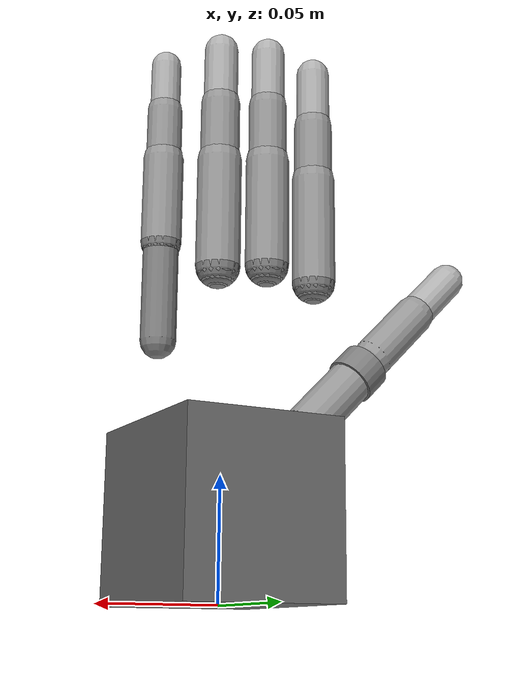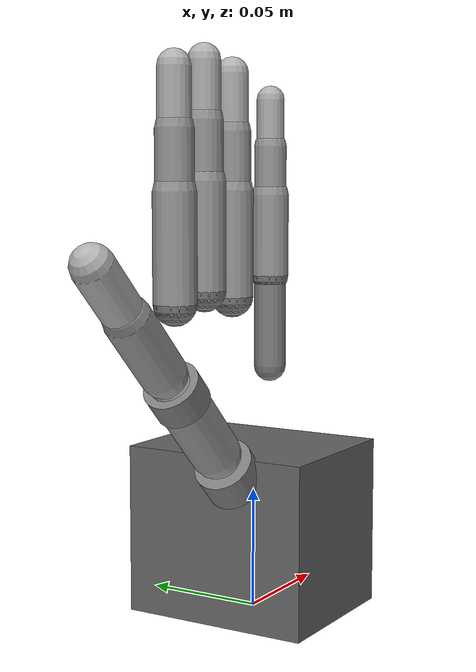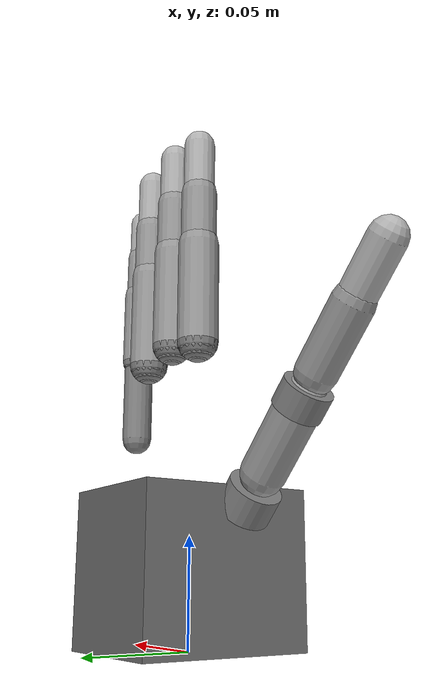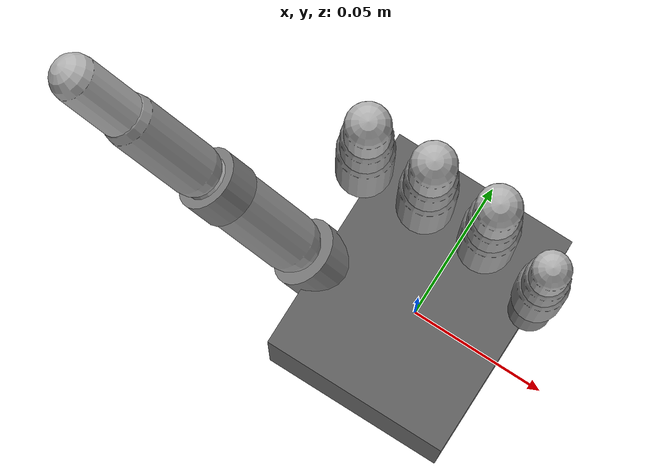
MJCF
<mujoco model="shadowhand-left">
  <compiler angle="radian" balanceinertia="true"/>

  <option jacobian="sparse"
          integrator="RK4"
          timestep="0.002"
          solver="Newton"
          iterations="50"
          tolerance="1e-10"
          impratio="10"/>

  <visual>
    <global offwidth="3840" offheight="2160" />
  </visual>

  <default>
    <joint armature="0.005" damping="0.1" frictionloss="0.01"/>
    <default class="robot">
      <default class="visual">
        <geom contype="0" conaffinity="0" group="1" />
      </default>
      <default class="collision">
        <geom contype="1" conaffinity="1" group="3" />
      </default>
    </default>
  </default>

  <asset>
    <texture type="skybox" builtin="gradient" rgb1="0.3 0.5 0.7" rgb2="0 0 0" width="512" height="3072"/>
    <texture type="2d" name="groundplane" builtin="checker" mark="edge" rgb1="0.2 0.3 0.4" rgb2="0.1 0.2 0.3" markrgb="0.8 0.8 0.8" width="300" height="300"/>
    <material name="groundplane" texture="groundplane" texuniform="true" texrepeat="5 5" reflectance="0.2"/>
  </asset>

  <worldbody>
    <!-- Palm -->
    <body name="palm" pos="0 0 0.035">
      <inertial pos="0 0 0.035" mass="0.3" diaginertia="0.0003 0.0002 0.0001"/>
      <geom name="palm_visual" type="box" size="0.033 0.04 0.035" rgba="0.4 0.4 0.4 1" class="visual"/>
      <geom name="palm_collision" type="box" size="0.033 0.04 0.035" class="collision"/>

      <!-- ==================== THUMB (TH) - Mirrored ==================== -->
      <body name="thbase" pos="-0.034 -0.009 0.029" euler="0 -0.7854 0.5236">
        <inertial pos="0 0 0" mass="0.01" diaginertia="1e-6 1e-6 1e-6"/>
        <joint name="THJ5" type="hinge" axis="0 0 1" range="-1.047 1.047" actuatorfrcrange="-2 2"/>
        <geom name="thbase_visual" type="cylinder" size="0.012 0.007" rgba="0.5 0.5 0.5 1" class="visual"/>
        <geom name="thbase_collision" type="cylinder" size="0.012 0.007" class="collision"/>

        <body name="thproximal" pos="0 0 0.014" euler="0 0 0">
          <inertial pos="0 0 0.019" mass="0.04" diaginertia="1e-5 1e-5 5e-6"/>
          <joint name="THJ4" type="hinge" axis="1 0 0" range="0 1.222" actuatorfrcrange="-2 2"/>
          <geom name="thproximal_visual" type="capsule" size="0.01" fromto="0 0 0 0 0 0.038" rgba="0.6 0.6 0.6 1" class="visual"/>
          <geom name="thproximal_collision" type="capsule" size="0.01" fromto="0 0 0 0 0 0.038" class="collision"/>

          <body name="thhub" pos="0 0 0.038">
            <inertial pos="0 0 0.005" mass="0.01" diaginertia="1e-6 1e-6 1e-6"/>
            <joint name="THJ3" type="hinge" axis="1 0 0" range="-0.209 0.209" actuatorfrcrange="-1 1"/>
            <geom name="thhub_visual" type="cylinder" size="0.011 0.006" rgba="0.5 0.5 0.5 1" class="visual"/>
            <geom name="thhub_collision" type="cylinder" size="0.011 0.006" class="collision"/>

            <body name="thmiddle" pos="0 0 0.012">
              <inertial pos="0 0 0.016" mass="0.026" diaginertia="8e-6 8e-6 3e-6"/>
              <joint name="THJ2" type="hinge" axis="1 0 0" range="-0.524 0.524" actuatorfrcrange="-1 1"/>
              <geom name="thmiddle_visual" type="capsule" size="0.009" fromto="0 0 0 0 0 0.032" rgba="0.6 0.6 0.6 1" class="visual"/>
              <geom name="thmiddle_collision" type="capsule" size="0.009" fromto="0 0 0 0 0 0.032" class="collision"/>

              <body name="thdistal" pos="0 0 0.032">
                <inertial pos="0 0 0.0135" mass="0.016" diaginertia="4e-6 4e-6 2e-6"/>
                <joint name="THJ1" type="hinge" axis="1 0 0" range="-0.262 1.571" actuatorfrcrange="-0.5 0.5"/>
                <geom name="thdistal_visual" type="capsule" size="0.008" fromto="0 0 0 0 0 0.027" rgba="0.7 0.7 0.7 1" class="visual"/>
                <geom name="thdistal_collision" type="capsule" size="0.008" fromto="0 0 0 0 0 0.027" class="collision"/>
                <site name="thtip" pos="0 0 0.027" size="0.005"/>
              </body>
            </body>
          </body>
        </body>
      </body>

      <!-- ==================== FIRST FINGER / INDEX (FF) - Mirrored ==================== -->
      <body name="ffknuckle" pos="-0.033 0.017 0.095">
        <inertial pos="0 0 0" mass="0.008" diaginertia="5e-7 5e-7 5e-7"/>
        <joint name="FFJ4" type="hinge" axis="0 1 0" range="-0.349 0.349" actuatorfrcrange="-0.5 0.5"/>
        <geom name="ffknuckle_visual" type="sphere" size="0.009" rgba="0.5 0.5 0.5 1" class="visual"/>
        <geom name="ffknuckle_collision" type="sphere" size="0.009" class="collision"/>

        <body name="ffproximal" pos="0 0 0">
          <inertial pos="0 0 0.0225" mass="0.03" diaginertia="1.2e-5 1.2e-5 4e-6"/>
          <joint name="FFJ3" type="hinge" axis="1 0 0" range="0 1.571" actuatorfrcrange="-2 2"/>
          <geom name="ffproximal_visual" type="capsule" size="0.009" fromto="0 0 0 0 0 0.045" rgba="0.6 0.6 0.6 1" class="visual"/>
          <geom name="ffproximal_collision" type="capsule" size="0.009" fromto="0 0 0 0 0 0.045" class="collision"/>

          <body name="ffmiddle" pos="0 0 0.045">
            <inertial pos="0 0 0.0125" mass="0.017" diaginertia="5e-6 5e-6 2e-6"/>
            <joint name="FFJ2" type="hinge" axis="1 0 0" range="0 1.571" actuatorfrcrange="-1 1"/>
            <geom name="ffmiddle_visual" type="capsule" size="0.008" fromto="0 0 0 0 0 0.025" rgba="0.6 0.6 0.6 1" class="visual"/>
            <geom name="ffmiddle_collision" type="capsule" size="0.008" fromto="0 0 0 0 0 0.025" class="collision"/>

            <body name="ffdistal" pos="0 0 0.025">
              <inertial pos="0 0 0.012" mass="0.012" diaginertia="3e-6 3e-6 1e-6"/>
              <joint name="FFJ1" type="hinge" axis="1 0 0" range="0 1.571" actuatorfrcrange="-0.5 0.5"/>
              <geom name="ffdistal_visual" type="capsule" size="0.007" fromto="0 0 0 0 0 0.024" rgba="0.7 0.7 0.7 1" class="visual"/>
              <geom name="ffdistal_collision" type="capsule" size="0.007" fromto="0 0 0 0 0 0.024" class="collision"/>
              <site name="fftip" pos="0 0 0.024" size="0.005"/>
            </body>
          </body>
        </body>
      </body>

      <!-- ==================== MIDDLE FINGER (MF) ==================== -->
      <body name="mfknuckle" pos="-0.011 0.017 0.099">
        <inertial pos="0 0 0" mass="0.008" diaginertia="5e-7 5e-7 5e-7"/>
        <joint name="MFJ4" type="hinge" axis="0 1 0" range="-0.349 0.349" actuatorfrcrange="-0.5 0.5"/>
        <geom name="mfknuckle_visual" type="sphere" size="0.009" rgba="0.5 0.5 0.5 1" class="visual"/>
        <geom name="mfknuckle_collision" type="sphere" size="0.009" class="collision"/>

        <body name="mfproximal" pos="0 0 0">
          <inertial pos="0 0 0.0225" mass="0.03" diaginertia="1.2e-5 1.2e-5 4e-6"/>
          <joint name="MFJ3" type="hinge" axis="1 0 0" range="0 1.571" actuatorfrcrange="-2 2"/>
          <geom name="mfproximal_visual" type="capsule" size="0.009" fromto="0 0 0 0 0 0.045" rgba="0.6 0.6 0.6 1" class="visual"/>
          <geom name="mfproximal_collision" type="capsule" size="0.009" fromto="0 0 0 0 0 0.045" class="collision"/>

          <body name="mfmiddle" pos="0 0 0.045">
            <inertial pos="0 0 0.0125" mass="0.017" diaginertia="5e-6 5e-6 2e-6"/>
            <joint name="MFJ2" type="hinge" axis="1 0 0" range="0 1.571" actuatorfrcrange="-1 1"/>
            <geom name="mfmiddle_visual" type="capsule" size="0.008" fromto="0 0 0 0 0 0.025" rgba="0.6 0.6 0.6 1" class="visual"/>
            <geom name="mfmiddle_collision" type="capsule" size="0.008" fromto="0 0 0 0 0 0.025" class="collision"/>

            <body name="mfdistal" pos="0 0 0.025">
              <inertial pos="0 0 0.012" mass="0.012" diaginertia="3e-6 3e-6 1e-6"/>
              <joint name="MFJ1" type="hinge" axis="1 0 0" range="0 1.571" actuatorfrcrange="-0.5 0.5"/>
              <geom name="mfdistal_visual" type="capsule" size="0.007" fromto="0 0 0 0 0 0.024" rgba="0.7 0.7 0.7 1" class="visual"/>
              <geom name="mfdistal_collision" type="capsule" size="0.007" fromto="0 0 0 0 0 0.024" class="collision"/>
              <site name="mftip" pos="0 0 0.024" size="0.005"/>
            </body>
          </body>
        </body>
      </body>

      <!-- ==================== RING FINGER (RF) - Mirrored ==================== -->
      <body name="rfknuckle" pos="0.011 0.017 0.095">
        <inertial pos="0 0 0" mass="0.008" diaginertia="5e-7 5e-7 5e-7"/>
        <joint name="RFJ4" type="hinge" axis="0 1 0" range="-0.349 0.349" actuatorfrcrange="-0.5 0.5"/>
        <geom name="rfknuckle_visual" type="sphere" size="0.009" rgba="0.5 0.5 0.5 1" class="visual"/>
        <geom name="rfknuckle_collision" type="sphere" size="0.009" class="collision"/>

        <body name="rfproximal" pos="0 0 0">
          <inertial pos="0 0 0.0225" mass="0.03" diaginertia="1.2e-5 1.2e-5 4e-6"/>
          <joint name="RFJ3" type="hinge" axis="1 0 0" range="0 1.571" actuatorfrcrange="-2 2"/>
          <geom name="rfproximal_visual" type="capsule" size="0.009" fromto="0 0 0 0 0 0.045" rgba="0.6 0.6 0.6 1" class="visual"/>
          <geom name="rfproximal_collision" type="capsule" size="0.009" fromto="0 0 0 0 0 0.045" class="collision"/>

          <body name="rfmiddle" pos="0 0 0.045">
            <inertial pos="0 0 0.0125" mass="0.017" diaginertia="5e-6 5e-6 2e-6"/>
            <joint name="RFJ2" type="hinge" axis="1 0 0" range="0 1.571" actuatorfrcrange="-1 1"/>
            <geom name="rfmiddle_visual" type="capsule" size="0.008" fromto="0 0 0 0 0 0.025" rgba="0.6 0.6 0.6 1" class="visual"/>
            <geom name="rfmiddle_collision" type="capsule" size="0.008" fromto="0 0 0 0 0 0.025" class="collision"/>

            <body name="rfdistal" pos="0 0 0.025">
              <inertial pos="0 0 0.012" mass="0.012" diaginertia="3e-6 3e-6 1e-6"/>
              <joint name="RFJ1" type="hinge" axis="1 0 0" range="0 1.571" actuatorfrcrange="-0.5 0.5"/>
              <geom name="rfdistal_visual" type="capsule" size="0.007" fromto="0 0 0 0 0 0.024" rgba="0.7 0.7 0.7 1" class="visual"/>
              <geom name="rfdistal_collision" type="capsule" size="0.007" fromto="0 0 0 0 0 0.024" class="collision"/>
              <site name="rftip" pos="0 0 0.024" size="0.005"/>
            </body>
          </body>
        </body>
      </body>

      <!-- ==================== LITTLE FINGER (LF) - Mirrored ==================== -->
      <body name="lfmetacarpal" pos="0.033 0.011 0.063" euler="0 0 0.0873">
        <inertial pos="0 0 0.02" mass="0.02" diaginertia="8e-6 8e-6 3e-6"/>
        <joint name="LFJ5" type="hinge" axis="0 1 0" range="0 0.698" actuatorfrcrange="-1 1"/>
        <geom name="lfmetacarpal_visual" type="capsule" size="0.007" fromto="0 0 0 0 0 0.04" rgba="0.5 0.5 0.5 1" class="visual"/>
        <geom name="lfmetacarpal_collision" type="capsule" size="0.007" fromto="0 0 0 0 0 0.04" class="collision"/>

        <body name="lfknuckle" pos="0 0 0.04">
          <inertial pos="0 0 0" mass="0.008" diaginertia="5e-7 5e-7 5e-7"/>
          <joint name="LFJ4" type="hinge" axis="0 1 0" range="-0.349 0.349" actuatorfrcrange="-0.5 0.5"/>
          <geom name="lfknuckle_visual" type="sphere" size="0.008" rgba="0.5 0.5 0.5 1" class="visual"/>
          <geom name="lfknuckle_collision" type="sphere" size="0.008" class="collision"/>

          <body name="lfproximal" pos="0 0 0">
            <inertial pos="0 0 0.0175" mass="0.025" diaginertia="8e-6 8e-6 3e-6"/>
            <joint name="LFJ3" type="hinge" axis="1 0 0" range="0 1.571" actuatorfrcrange="-2 2"/>
            <geom name="lfproximal_visual" type="capsule" size="0.008" fromto="0 0 0 0 0 0.035" rgba="0.6 0.6 0.6 1" class="visual"/>
            <geom name="lfproximal_collision" type="capsule" size="0.008" fromto="0 0 0 0 0 0.035" class="collision"/>

            <body name="lfmiddle" pos="0 0 0.035">
              <inertial pos="0 0 0.0105" mass="0.014" diaginertia="4e-6 4e-6 1.5e-6"/>
              <joint name="LFJ2" type="hinge" axis="1 0 0" range="0 1.571" actuatorfrcrange="-1 1"/>
              <geom name="lfmiddle_visual" type="capsule" size="0.007" fromto="0 0 0 0 0 0.021" rgba="0.6 0.6 0.6 1" class="visual"/>
              <geom name="lfmiddle_collision" type="capsule" size="0.007" fromto="0 0 0 0 0 0.021" class="collision"/>

              <body name="lfdistal" pos="0 0 0.021">
                <inertial pos="0 0 0.01" mass="0.01" diaginertia="2e-6 2e-6 1e-6"/>
                <joint name="LFJ1" type="hinge" axis="1 0 0" range="0 1.571" actuatorfrcrange="-0.5 0.5"/>
                <geom name="lfdistal_visual" type="capsule" size="0.006" fromto="0 0 0 0 0 0.020" rgba="0.7 0.7 0.7 1" class="visual"/>
                <geom name="lfdistal_collision" type="capsule" size="0.006" fromto="0 0 0 0 0 0.020" class="collision"/>
                <site name="lftip" pos="0 0 0.020" size="0.005"/>
              </body>
            </body>
          </body>
        </body>
      </body>
    </body>
  </worldbody>

  <actuator>
    <!-- Thumb actuators -->
    <position name="THJ5" joint="THJ5" ctrlrange="-1.047 1.047" kp="5" forcerange="-2 2"/>
    <position name="THJ4" joint="THJ4" ctrlrange="0 1.222" kp="5" forcerange="-2 2"/>
    <position name="THJ3" joint="THJ3" ctrlrange="-0.209 0.209" kp="2" forcerange="-1 1"/>
    <position name="THJ2" joint="THJ2" ctrlrange="-0.524 0.524" kp="2" forcerange="-1 1"/>
    <position name="THJ1" joint="THJ1" ctrlrange="-0.262 1.571" kp="1" forcerange="-0.5 0.5"/>

    <!-- First finger actuators -->
    <position name="FFJ4" joint="FFJ4" ctrlrange="-0.349 0.349" kp="1" forcerange="-0.5 0.5"/>
    <position name="FFJ3" joint="FFJ3" ctrlrange="0 1.571" kp="5" forcerange="-2 2"/>
    <position name="FFJ2" joint="FFJ2" ctrlrange="0 1.571" kp="2" forcerange="-1 1"/>
    <position name="FFJ1" joint="FFJ1" ctrlrange="0 1.571" kp="1" forcerange="-0.5 0.5"/>

    <!-- Middle finger actuators -->
    <position name="MFJ4" joint="MFJ4" ctrlrange="-0.349 0.349" kp="1" forcerange="-0.5 0.5"/>
    <position name="MFJ3" joint="MFJ3" ctrlrange="0 1.571" kp="5" forcerange="-2 2"/>
    <position name="MFJ2" joint="MFJ2" ctrlrange="0 1.571" kp="2" forcerange="-1 1"/>
    <position name="MFJ1" joint="MFJ1" ctrlrange="0 1.571" kp="1" forcerange="-0.5 0.5"/>

    <!-- Ring finger actuators -->
    <position name="RFJ4" joint="RFJ4" ctrlrange="-0.349 0.349" kp="1" forcerange="-0.5 0.5"/>
    <position name="RFJ3" joint="RFJ3" ctrlrange="0 1.571" kp="5" forcerange="-2 2"/>
    <position name="RFJ2" joint="RFJ2" ctrlrange="0 1.571" kp="2" forcerange="-1 1"/>
    <position name="RFJ1" joint="RFJ1" ctrlrange="0 1.571" kp="1" forcerange="-0.5 0.5"/>

    <!-- Little finger actuators -->
    <position name="LFJ5" joint="LFJ5" ctrlrange="0 0.698" kp="2" forcerange="-1 1"/>
    <position name="LFJ4" joint="LFJ4" ctrlrange="-0.349 0.349" kp="1" forcerange="-0.5 0.5"/>
    <position name="LFJ3" joint="LFJ3" ctrlrange="0 1.571" kp="5" forcerange="-2 2"/>
    <position name="LFJ2" joint="LFJ2" ctrlrange="0 1.571" kp="2" forcerange="-1 1"/>
    <position name="LFJ1" joint="LFJ1" ctrlrange="0 1.571" kp="1" forcerange="-0.5 0.5"/>
  </actuator>

  <contact>
    <!-- Exclude adjacent finger links -->
    <exclude body1="palm" body2="thbase"/>
    <exclude body1="thbase" body2="thproximal"/>
    <exclude body1="thproximal" body2="thhub"/>
    <exclude body1="thhub" body2="thmiddle"/>
    <exclude body1="thmiddle" body2="thdistal"/>

    <exclude body1="palm" body2="ffknuckle"/>
    <exclude body1="ffknuckle" body2="ffproximal"/>
    <exclude body1="ffproximal" body2="ffmiddle"/>
    <exclude body1="ffmiddle" body2="ffdistal"/>

    <exclude body1="palm" body2="mfknuckle"/>
    <exclude body1="mfknuckle" body2="mfproximal"/>
    <exclude body1="mfproximal" body2="mfmiddle"/>
    <exclude body1="mfmiddle" body2="mfdistal"/>

    <exclude body1="palm" body2="rfknuckle"/>
    <exclude body1="rfknuckle" body2="rfproximal"/>
    <exclude body1="rfproximal" body2="rfmiddle"/>
    <exclude body1="rfmiddle" body2="rfdistal"/>

    <exclude body1="palm" body2="lfmetacarpal"/>
    <exclude body1="lfmetacarpal" body2="lfknuckle"/>
    <exclude body1="lfknuckle" body2="lfproximal"/>
    <exclude body1="lfproximal" body2="lfmiddle"/>
    <exclude body1="lfmiddle" body2="lfdistal"/>
  </contact>
</mujoco>
